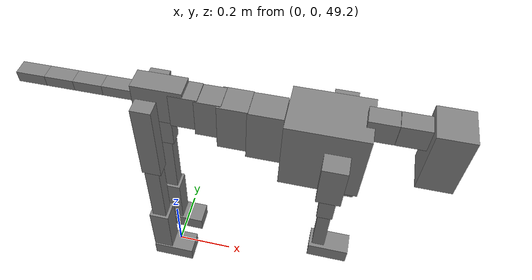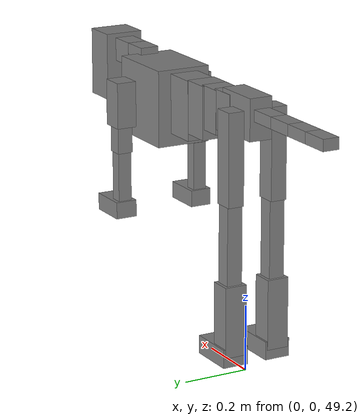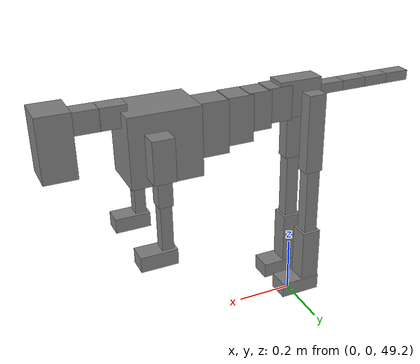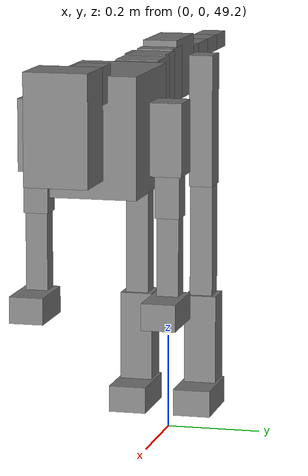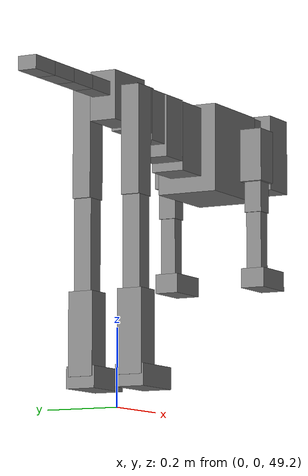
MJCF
<mujoco model="dog">

    <default>
        <joint armature="0.02" stiffness="1" damping="0.2" limited="true"/>
        <geom condim="3" friction="1 0.05 0.05" margin="0.01"/>
        <motor ctrllimited="true" ctrlrange="-1.0 1.0" forcelimited="true" gear="50"/>
    </default>

    <compiler inertiafromgeom="true" angle="radian"/>

    <option timestep="0.016" iterations="50" tolerance="1e-10" solver="Newton" jacobian="dense" cone="pyramidal"/>

    <size nconmax="20000" njmax="60000" nstack="5000000"/>
    <visual>
        <map force="0.1" zfar="30"/>
        <rgba haze="0.15 0.25 0.35 1"/>
        <quality shadowsize="2048"/>
        <global offwidth="800" offheight="800"/>
    </visual>

    <asset>
        <texture type="skybox" builtin="gradient" rgb1="0.3 0.5 0.7" rgb2="0 0 0" width="512" height="512"/>
        <texture name="texplane" type="2d" builtin="checker" rgb1=".2 .3 .4" rgb2=".1 0.15 0.2" width="512" height="512"
                 mark="cross" markrgb=".8 .8 .8"/>
        <texture name="texgeom" type="cube" builtin="flat" mark="cross" width="127" height="1278" rgb1="0.8 0.6 0.4"
                 rgb2="0.8 0.6 0.4" markrgb="1 1 1" random="0.01"/>

        <material name="matplane" reflectance="0.3" texture="texplane" texrepeat="1 1" texuniform="true"/>
        <material name="matgeom" texture="texgeom" texuniform="true" rgba="0.8 0.6 .4 1"/>
    </asset>

    <worldbody>
        <geom name="floor" pos="0 0 0" size="0 0 .25" type="plane" material="matplane" condim="3"/>

        <light directional="false" diffuse=".2 .2 .2" specular="0 0 0" pos="0 0 5" dir="0 0 -1" castshadow="false"/>
        <light mode="targetbodycom" target="torso" directional="false" diffuse=".8 .8 .8" specular="0.3 0.3 0.3"
               pos="0 0 4.0" dir="0 0 -1"/>

        <body name="root" pos="0 0 50">
            <freejoint name="root_1"/>
            <geom type="box" pos="0 0 -0.02" size="0.0774  0.0358  0.063" density="2030"/>

            <body name="spine1" pos="0.054 0 0">
                <joint name="spine1_y" axis="0 1 0" range="0 0.7" limited="true"/>
                <geom type="box" pos="0.02375 0 -0.03" size="0.04375  0.0375  0.05985" density="2030"/>

                <body name="spine2" pos="0.0612 0 0">
                    <joint name="spine2_y" axis="0 1 0" range="-0.15 0.15" limited="true"/>
                    <geom type="box" pos="0.03555  0  -0.04" size="0.04055  0.039  0.06615" density="2030"/>

                    <body name="spine3" pos="0.0730 0 0">
                        <joint name="spine3_y" axis="0 1 0" range="-0.15 0.15" limited="true"/>
                        <geom type="box" pos="0.03555  0  -0.057" size="0.04555  0.0445  0.081" density="2030"/>

                        <body name="spine4" pos="0.0780 0 0">
                            <joint name="spine4_y" axis="0 1 0" range="-0.15 0.15" limited="true"/>
                            <geom type="box" pos="0.05265  0  -0.07" size="0.05265  0.045  0.09135" density="2030"/>

                            <body name="torso" pos="0.1082 0 0">
                                <joint name="torso_y" axis="0 1 0" range="-0.15 0.15" limited="true"/>
                                <geom type="box" pos="0.11925  0  -0.085" size="0.11925  0.085  0.11745"
                                      density="2030"/>

                                <body name="neck1" pos="0.2160  0   0.0180">
                                    <joint name="neck1_y" axis="0 1 0" range="-1.2  -1" limited="true"/>
                                    <geom type="box" pos="0.0423  0  0" size="0.0423  0.03  0.036" density="2325"/>

                                    <body name="neck2" pos="0.0853  0  0">
                                        <joint name="neck2_y" axis="0 1 0" range="0.1  0" limited="true"/>
                                        <geom type="box" pos="0.0423  0  0" size="0.0423  0.03  0.036" density="2325"/>

                                        <body name="head" pos="0.0853  0  0">
                                            <joint name="head_y" axis="0 1 0" range="-0.3  -0.2" limited="true"/>
                                            <geom type="box" pos="0.0531  0  -0.055" size="0.0531  0.06  0.1044"
                                                  density="4030"/>

                                        </body>
                                    </body>
                                </body>

                                <body name="front_shoulder" pos="0.156  0   -0.0480">
                                    <joint name="front_shoulder_y" axis="0 1 0" range="-1 1.5" limited="true"/>
                                    <geom type="box" pos="0 0.13 -0.0439" size="0.0362  0.0310  0.0706" density="1158"/>
                                    <geom type="box" pos="0 -0.13 -0.0439" size="0.0362  0.0310  0.0706"
                                          density="1158"/>

                                    <body name="front_elbow" pos="0  0  -0.0879">
                                        <joint name="front_elbow_y" axis="0 1 0" range="-2 0" limited="true"/>
                                        <geom type="box" pos="0 0.13 -0.0544" size="0.0237  0.0242  0.0544"
                                              density="1081"/>
                                        <geom type="box" pos="0 -0.13 -0.0544" size="0.0237  0.0242  0.0544"
                                              density="1081"/>

                                        <body name="front_wrist" pos="0  0  -0.1088">
                                            <joint name="front_wrist_y" axis="0 1 0" range="-0.2 0" limited="true"/>
                                            <geom type="box" pos="0 0.13 -0.0833" size="0.0193  0.0215  0.0965"
                                                  density="1664"/>
                                            <geom type="box" pos="0 -0.13 -0.0833" size="0.0193  0.0215  0.0965"
                                                  density="1664"/>

                                            <body name="front_finger_end" pos="0  0  -0.1666">
                                                <joint name="front_finger_y" axis="0 1 0" range="-0.4 1"
                                                       limited="true"/>
                                                <geom type="box" pos="0.0336  0.13  -0.0111"
                                                      size="0.0616  0.0336  0.0261" density="1515"/>
                                                <geom type="box" pos="0.0336  -0.13  -0.0111"
                                                      size="0.0616  0.0336  0.0261" density="1515"/>

                                            </body>

                                        </body>
                                    </body>
                                </body>

                            </body>
                        </body>
                    </body>
                </body>
            </body>

            <body name="back_hip" pos="-0.03 0 -0.018">
                <joint name="back_hip_y" axis="0 1 0" range="-1.5 0.3" limited="true"/>
                <geom type="box" pos="0 0.07 -0.1165" size="0.0318  0.0249  0.1393" density="1154"/>
                <geom type="box" pos="0 -0.07 -0.1165" size="0.0318  0.0249  0.1393" density="1154"/>

                <body name="back_knee" pos="0  0  -0.2330">
                    <joint name="back_knee_y" axis="0 1 0" range="0 2.8" limited="true"/>
                    <geom type="box" pos="0 0.07 -0.1350" size="0.0245  0.0241  0.1505" density="1227"/>
                    <geom type="box" pos="0 -0.07 -0.1350" size="0.0245  0.0241  0.1505" density="1227"/>

                    <body name="back_ankle" pos="0  0  -0.2700">
                        <joint name="back_ankle_y" axis="0 1 0" range="-2.2 0" limited="true"/>
                        <geom type="box" pos="0 0.07 -0.0961" size="0.0342  0.0342  0.1073" density="1284"/>
                        <geom type="box" pos="0 -0.07 -0.0961" size="0.0342  0.0342  0.1073" density="1284"/>

                        <body name="back_toe_end" pos="0  0  -0.1921">
                            <joint name="back_toe_y" axis="0 1 0" range="-0.4 1" limited="true"/>
                            <geom type="box" pos="0.0397  0.07  -0.0130" size="0.0728  0.0397  0.0280" density="1515"/>
                            <geom type="box" pos="0.0397  -0.07  -0.0130" size="0.0728  0.0397  0.0280" density="1515"/>

                        </body>
                    </body>
                </body>
            </body>

            <body name="tail1" pos="-0.074 0 -0.006">
                <joint name="tail1_y" axis="0 1 0" range="-0.2 0.2" limited="true"/>
                <geom type="box" pos="-0.0536  0  0" size="0.045  0.025  0.0175" density="1587"/>

                <body name="tail2" pos="-0.09 0 0">
                    <joint name="tail2_y" axis="0 1 0" range="-0.2 0.2" limited="true"/>
                    <geom type="box" pos="-0.0536  0  0" size="0.045  0.025  0.0175" density="1587"/>

                    <body name="tail3" pos="-0.09 0 0">
                        <joint name="tail3_y" axis="0 1 0" range="-0.2 0.2" limited="true"/>
                        <geom type="box" pos="-0.0536  0  0" size="0.045  0.025  0.0175" density="1587"/>

                        <body name="tail4" pos="-0.09 0 0">
                            <joint name="tail4_y" axis="0 1 0" range="-0.2 0.2" limited="true"/>
                            <geom type="box" pos="-0.0536  0  0" size="0.045  0.025  0.0175" density="1587"/>

                        </body>
                    </body>
                </body>
            </body>
        </body>
    </worldbody>

    <actuator>
        <motor joint="spine1_y" forcerange="-150 150     "/>
        <motor joint="spine2_y" forcerange="-150 150     "/>
        <motor joint="spine3_y" forcerange="-150 150     "/>
        <motor joint="spine4_y" forcerange="-150 150     "/>
        <motor joint="torso_y" forcerange="-150 150     "/>
        <motor joint="neck1_y" forcerange="-100 100       "/>
        <motor joint="neck2_y" forcerange="-100 100       "/>
        <motor joint="head_y" forcerange="-150 150       "/>
        <motor joint="front_shoulder_y" forcerange="-158.97 147.55"/>
        <motor joint="front_elbow_y" forcerange="-148.12 128.08"/>
        <motor joint="front_wrist_y" forcerange="-55.78 116.11"/>
        <motor joint="front_finger_y" forcerange="-40.73 98.51"/>
        <motor joint="back_hip_y" forcerange="-223.47 308.98"/>
        <motor joint="back_knee_y" forcerange="-201.62 349.61"/>
        <motor joint="back_angle_y" forcerange="-241.36 205.18"/>
        <motor joint="back_toe_y" forcerange="-124.61 112.89"/>
        <motor joint="tail1_y" forcerange="-50 50     "/>
        <motor joint="tail2_y" forcerange="-50 50     "/>
        <motor joint="tail3_y" forcerange="-50 50     "/>
        <motor joint="tail4_y" forcerange="-50 50     "/>
    </actuator>
</mujoco>
